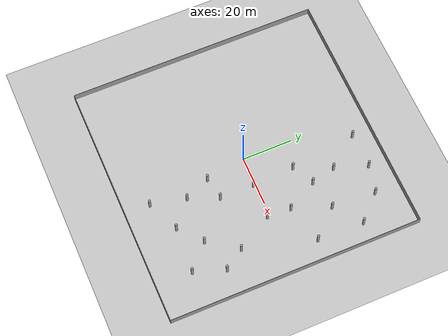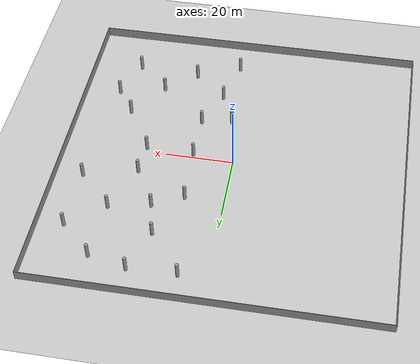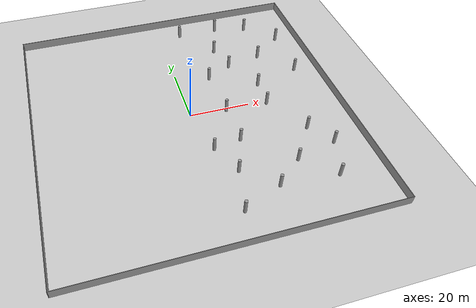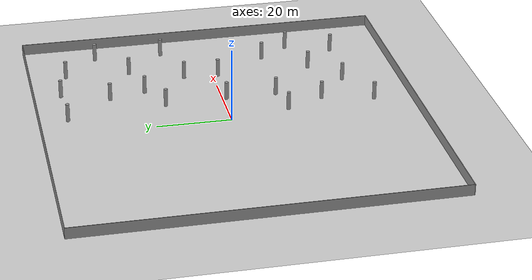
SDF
<sdf version="1.7">
 <world name="default">
  <model name="ground_plane">
   <static>1</static>
   <link name="link">
    <collision name="collision">
     <geometry><plane><normal>0 0 1</normal><size>100 100</size></plane></geometry>
     <surface><friction><ode><mu>100</mu><mu2>50</mu2></ode></friction></surface>
    </collision>
    <visual name="visual">
     <cast_shadows>0</cast_shadows>
     <geometry><plane><normal>0 0 1</normal><size>100 100</size></plane></geometry>
     <material>
      <script><uri>file://media/materials/scripts/gazebo.material</uri><name>Gazebo/Grey</name></script>
     </material>
    </visual>
   </link>
  </model>
  <model name="Fence100">
   <link name="Wall_5">
    <collision name="Wall_5_Collision">
     <geometry><box><size>100.15 0.15 3</size></box></geometry>
     <pose>0 0 1.5 0 -0 0</pose>
    </collision>
    <visual name="Wall_5_Visual">
     <pose>0 0 1.5 0 -0 0</pose>
     <geometry><box><size>100.15 0.15 3</size></box></geometry>
     <material>
      <script><uri>file://media/materials/scripts/gazebo.material</uri><name>Gazebo/Grey</name></script>
      <ambient>1 1 1 1</ambient>
     </material>
     <meta><layer>0</layer></meta>
    </visual>
    <pose>-50 0 0 0 -0 1.5708</pose>
   </link>
   <link name="Wall_6">
    <collision name="Wall_6_Collision">
     <geometry><box><size>100.15 0.15 3</size></box></geometry>
     <pose>0 0 1.5 0 -0 0</pose>
    </collision>
    <visual name="Wall_6_Visual">
     <pose>0 0 1.5 0 -0 0</pose>
     <geometry><box><size>100.15 0.15 3</size></box></geometry>
     <material>
      <script><uri>file://media/materials/scripts/gazebo.material</uri><name>Gazebo/Grey</name></script>
      <ambient>1 1 1 1</ambient>
     </material>
     <meta><layer>0</layer></meta>
    </visual>
    <pose>0 50 0 0 -0 0</pose>
   </link>
   <link name="Wall_8">
    <collision name="Wall_8_Collision">
     <geometry><box><size>100.15 0.15 3</size></box></geometry>
     <pose>0 0 1.5 0 -0 0</pose>
    </collision>
    <visual name="Wall_8_Visual">
     <pose>0 0 1.5 0 -0 0</pose>
     <geometry><box><size>100.15 0.15 3</size></box></geometry>
     <material>
      <script><uri>file://media/materials/scripts/gazebo.material</uri><name>Gazebo/Grey</name></script>
      <ambient>1 1 1 1</ambient>
     </material>
     <meta><layer>0</layer></meta>
    </visual>
    <pose>50 0 0 0 -0 -1.5708</pose>
   </link>
   <link name="Wall_9">
    <collision name="Wall_9_Collision">
     <geometry><box><size>100.15 0.15 3</size></box></geometry>
     <pose>0 0 1.5 0 -0 0</pose>
    </collision>
    <visual name="Wall_9_Visual">
     <pose>0 0 1.5 0 -0 0</pose>
     <geometry><box><size>100.15 0.15 3</size></box></geometry>
     <material>
      <script><uri>file://media/materials/scripts/gazebo.material</uri><name>Gazebo/Grey</name></script>
      <ambient>1 1 1 1</ambient>
     </material>
     <meta><layer>0</layer></meta>
    </visual>
    <pose>0 -50 0 0 -0 3.14159</pose>
   </link>
   <static>1</static>
  </model>
  <model name="cylinder5">
   <link name="link">
    <inertial>
     <mass>1</mass>
     <inertia><ixx>0.145833</ixx><ixy>0</ixy><ixz>0</ixz><iyy>0.145833</iyy><iyz>0</iyz><izz>0.125</izz></inertia>
    </inertial>
    <visual name="visual">
     <geometry><cylinder><radius>0.5</radius><length>5</length></cylinder></geometry>
     <material>
      <script><name>Gazebo/Grey</name><uri>file://media/materials/scripts/gazebo.material</uri></script>
      <shader type="pixel"><normal_map>__default__</normal_map></shader>
      <ambient>0.3 0.3 0.3 1</ambient>
      <diffuse>0.7 0.7 0.7 1</diffuse>
      <specular>0.01 0.01 0.01 1</specular>
      <emissive>0 0 0 1</emissive>
     </material>
    </visual>
    <collision name="collision">
     <geometry><cylinder><radius>0.5</radius><length>5</length></cylinder></geometry>
     <surface>
      <friction>
       <ode><mu>1</mu><mu2>1</mu2><fdir1>0 0 0</fdir1><slip1>0</slip1><slip2>0</slip2></ode>
       <torsional>
        <coefficient>1</coefficient>
        <patch_radius>0</patch_radius>
        <surface_radius>0</surface_radius>
        <use_patch_radius>1</use_patch_radius>
        <ode><slip>0</slip></ode>
       </torsional>
      </friction>
      <bounce><restitution_coefficient>0</restitution_coefficient><threshold>1e+06</threshold></bounce>
      <contact>
       <collide_without_contact>0</collide_without_contact>
       <collide_without_contact_bitmask>1</collide_without_contact_bitmask>
       <collide_bitmask>1</collide_bitmask>
       <ode>
        <soft_cfm>0</soft_cfm>
        <soft_erp>0.2</soft_erp>
        <kp>1e+13</kp>
        <kd>1</kd>
        <max_vel>0.01</max_vel>
        <min_depth>0</min_depth>
       </ode>
       <bullet>
        <split_impulse>1</split_impulse>
        <split_impulse_penetration_threshold>-0.01</split_impulse_penetration_threshold>
        <soft_cfm>0</soft_cfm>
        <soft_erp>0.2</soft_erp>
        <kp>1e+13</kp>
        <kd>1</kd>
       </bullet>
      </contact>
     </surface>
    </collision>
   </link>
   <static>0</static>
   <pose>20 20 2.5 0 -0 0</pose>
  </model>
  <model name="cylinder5_clone">
   <link name="link">
    <inertial>
     <mass>1</mass>
     <inertia><ixx>0.145833</ixx><ixy>0</ixy><ixz>0</ixz><iyy>0.145833</iyy><iyz>0</iyz><izz>0.125</izz></inertia>
    </inertial>
    <visual name="visual">
     <geometry><cylinder><radius>0.5</radius><length>5</length></cylinder></geometry>
     <material>
      <script><name>Gazebo/Grey</name><uri>file://media/materials/scripts/gazebo.material</uri></script>
      <shader type="pixel"><normal_map>__default__</normal_map></shader>
      <ambient>0.3 0.3 0.3 1</ambient>
      <diffuse>0.7 0.7 0.7 1</diffuse>
      <specular>0.01 0.01 0.01 1</specular>
      <emissive>0 0 0 1</emissive>
     </material>
    </visual>
    <collision name="collision">
     <geometry><cylinder><radius>0.5</radius><length>5</length></cylinder></geometry>
     <surface>
      <friction>
       <ode><mu>1</mu><mu2>1</mu2><fdir1>0 0 0</fdir1><slip1>0</slip1><slip2>0</slip2></ode>
       <torsional>
        <coefficient>1</coefficient>
        <patch_radius>0</patch_radius>
        <surface_radius>0</surface_radius>
        <use_patch_radius>1</use_patch_radius>
        <ode><slip>0</slip></ode>
       </torsional>
      </friction>
      <bounce><restitution_coefficient>0</restitution_coefficient><threshold>1e+06</threshold></bounce>
      <contact>
       <collide_without_contact>0</collide_without_contact>
       <collide_without_contact_bitmask>1</collide_without_contact_bitmask>
       <collide_bitmask>1</collide_bitmask>
       <ode>
        <soft_cfm>0</soft_cfm>
        <soft_erp>0.2</soft_erp>
        <kp>1e+13</kp>
        <kd>1</kd>
        <max_vel>0.01</max_vel>
        <min_depth>0</min_depth>
       </ode>
       <bullet>
        <split_impulse>1</split_impulse>
        <split_impulse_penetration_threshold>-0.01</split_impulse_penetration_threshold>
        <soft_cfm>0</soft_cfm>
        <soft_erp>0.2</soft_erp>
        <kp>1e+13</kp>
        <kd>1</kd>
       </bullet>
      </contact>
     </surface>
    </collision>
   </link>
   <static>0</static>
   <pose>17.5739 29.7245 2.5 0 -0 0</pose>
  </model>
  <model name="cylinder5_clone_0">
   <link name="link">
    <inertial>
     <mass>1</mass>
     <inertia><ixx>0.145833</ixx><ixy>0</ixy><ixz>0</ixz><iyy>0.145833</iyy><iyz>0</iyz><izz>0.125</izz></inertia>
    </inertial>
    <visual name="visual">
     <geometry><cylinder><radius>0.5</radius><length>5</length></cylinder></geometry>
     <material>
      <script><name>Gazebo/Grey</name><uri>file://media/materials/scripts/gazebo.material</uri></script>
      <shader type="pixel"><normal_map>__default__</normal_map></shader>
      <ambient>0.3 0.3 0.3 1</ambient>
      <diffuse>0.7 0.7 0.7 1</diffuse>
      <specular>0.01 0.01 0.01 1</specular>
      <emissive>0 0 0 1</emissive>
     </material>
    </visual>
    <collision name="collision">
     <geometry><cylinder><radius>0.5</radius><length>5</length></cylinder></geometry>
     <surface>
      <friction>
       <ode><mu>1</mu><mu2>1</mu2><fdir1>0 0 0</fdir1><slip1>0</slip1><slip2>0</slip2></ode>
       <torsional>
        <coefficient>1</coefficient>
        <patch_radius>0</patch_radius>
        <surface_radius>0</surface_radius>
        <use_patch_radius>1</use_patch_radius>
        <ode><slip>0</slip></ode>
       </torsional>
      </friction>
      <bounce><restitution_coefficient>0</restitution_coefficient><threshold>1e+06</threshold></bounce>
      <contact>
       <collide_without_contact>0</collide_without_contact>
       <collide_without_contact_bitmask>1</collide_without_contact_bitmask>
       <collide_bitmask>1</collide_bitmask>
       <ode>
        <soft_cfm>0</soft_cfm>
        <soft_erp>0.2</soft_erp>
        <kp>1e+13</kp>
        <kd>1</kd>
        <max_vel>0.01</max_vel>
        <min_depth>0</min_depth>
       </ode>
       <bullet>
        <split_impulse>1</split_impulse>
        <split_impulse_penetration_threshold>-0.01</split_impulse_penetration_threshold>
        <soft_cfm>0</soft_cfm>
        <soft_erp>0.2</soft_erp>
        <kp>1e+13</kp>
        <kd>1</kd>
       </bullet>
      </contact>
     </surface>
    </collision>
   </link>
   <static>0</static>
   <pose>31.9826 22.4752 2.5 0 -0 0</pose>
  </model>
  <model name="cylinder5_clone_1">
   <link name="link">
    <inertial>
     <mass>1</mass>
     <inertia><ixx>0.145833</ixx><ixy>0</ixy><ixz>0</ixz><iyy>0.145833</iyy><iyz>0</iyz><izz>0.125</izz></inertia>
    </inertial>
    <visual name="visual">
     <geometry><cylinder><radius>0.5</radius><length>5</length></cylinder></geometry>
     <material>
      <script><name>Gazebo/Grey</name><uri>file://media/materials/scripts/gazebo.material</uri></script>
      <shader type="pixel"><normal_map>__default__</normal_map></shader>
      <ambient>0.3 0.3 0.3 1</ambient>
      <diffuse>0.7 0.7 0.7 1</diffuse>
      <specular>0.01 0.01 0.01 1</specular>
      <emissive>0 0 0 1</emissive>
     </material>
    </visual>
    <collision name="collision">
     <geometry><cylinder><radius>0.5</radius><length>5</length></cylinder></geometry>
     <surface>
      <friction>
       <ode><mu>1</mu><mu2>1</mu2><fdir1>0 0 0</fdir1><slip1>0</slip1><slip2>0</slip2></ode>
       <torsional>
        <coefficient>1</coefficient>
        <patch_radius>0</patch_radius>
        <surface_radius>0</surface_radius>
        <use_patch_radius>1</use_patch_radius>
        <ode><slip>0</slip></ode>
       </torsional>
      </friction>
      <bounce><restitution_coefficient>0</restitution_coefficient><threshold>1e+06</threshold></bounce>
      <contact>
       <collide_without_contact>0</collide_without_contact>
       <collide_without_contact_bitmask>1</collide_without_contact_bitmask>
       <collide_bitmask>1</collide_bitmask>
       <ode>
        <soft_cfm>0</soft_cfm>
        <soft_erp>0.2</soft_erp>
        <kp>1e+13</kp>
        <kd>1</kd>
        <max_vel>0.01</max_vel>
        <min_depth>0</min_depth>
       </ode>
       <bullet>
        <split_impulse>1</split_impulse>
        <split_impulse_penetration_threshold>-0.01</split_impulse_penetration_threshold>
        <soft_cfm>0</soft_cfm>
        <soft_erp>0.2</soft_erp>
        <kp>1e+13</kp>
        <kd>1</kd>
       </bullet>
      </contact>
     </surface>
    </collision>
   </link>
   <static>0</static>
   <pose>26.0453 -1.37565 2.5 0 -0 0</pose>
  </model>
  <model name="cylinder5_clone_2">
   <link name="link">
    <inertial>
     <mass>1</mass>
     <inertia><ixx>0.145833</ixx><ixy>0</ixy><ixz>0</ixz><iyy>0.145833</iyy><iyz>0</iyz><izz>0.125</izz></inertia>
    </inertial>
    <visual name="visual">
     <geometry><cylinder><radius>0.5</radius><length>5</length></cylinder></geometry>
     <material>
      <script><name>Gazebo/Grey</name><uri>file://media/materials/scripts/gazebo.material</uri></script>
      <shader type="pixel"><normal_map>__default__</normal_map></shader>
      <ambient>0.3 0.3 0.3 1</ambient>
      <diffuse>0.7 0.7 0.7 1</diffuse>
      <specular>0.01 0.01 0.01 1</specular>
      <emissive>0 0 0 1</emissive>
     </material>
    </visual>
    <collision name="collision">
     <geometry><cylinder><radius>0.5</radius><length>5</length></cylinder></geometry>
     <surface>
      <friction>
       <ode><mu>1</mu><mu2>1</mu2><fdir1>0 0 0</fdir1><slip1>0</slip1><slip2>0</slip2></ode>
       <torsional>
        <coefficient>1</coefficient>
        <patch_radius>0</patch_radius>
        <surface_radius>0</surface_radius>
        <use_patch_radius>1</use_patch_radius>
        <ode><slip>0</slip></ode>
       </torsional>
      </friction>
      <bounce><restitution_coefficient>0</restitution_coefficient><threshold>1e+06</threshold></bounce>
      <contact>
       <collide_without_contact>0</collide_without_contact>
       <collide_without_contact_bitmask>1</collide_without_contact_bitmask>
       <collide_bitmask>1</collide_bitmask>
       <ode>
        <soft_cfm>0</soft_cfm>
        <soft_erp>0.2</soft_erp>
        <kp>1e+13</kp>
        <kd>1</kd>
        <max_vel>0.01</max_vel>
        <min_depth>0</min_depth>
       </ode>
       <bullet>
        <split_impulse>1</split_impulse>
        <split_impulse_penetration_threshold>-0.01</split_impulse_penetration_threshold>
        <soft_cfm>0</soft_cfm>
        <soft_erp>0.2</soft_erp>
        <kp>1e+13</kp>
        <kd>1</kd>
       </bullet>
      </contact>
     </surface>
    </collision>
   </link>
   <static>0</static>
   <pose>26.5297 7.97836 2.5 0 -0 0</pose>
  </model>
  <model name="cylinder5_clone_12">
   <link name="link">
    <inertial>
     <mass>1</mass>
     <inertia><ixx>0.145833</ixx><ixy>0</ixy><ixz>0</ixz><iyy>0.145833</iyy><iyz>0</iyz><izz>0.125</izz></inertia>
    </inertial>
    <visual name="visual">
     <geometry><cylinder><radius>0.5</radius><length>5</length></cylinder></geometry>
     <material>
      <script><name>Gazebo/Grey</name><uri>file://media/materials/scripts/gazebo.material</uri></script>
      <shader type="pixel"><normal_map>__default__</normal_map></shader>
      <ambient>0.3 0.3 0.3 1</ambient>
      <diffuse>0.7 0.7 0.7 1</diffuse>
      <specular>0.01 0.01 0.01 1</specular>
      <emissive>0 0 0 1</emissive>
     </material>
    </visual>
    <collision name="collision">
     <geometry><cylinder><radius>0.5</radius><length>5</length></cylinder></geometry>
     <surface>
      <friction>
       <ode><mu>1</mu><mu2>1</mu2><fdir1>0 0 0</fdir1><slip1>0</slip1><slip2>0</slip2></ode>
       <torsional>
        <coefficient>1</coefficient>
        <patch_radius>0</patch_radius>
        <surface_radius>0</surface_radius>
        <use_patch_radius>1</use_patch_radius>
        <ode><slip>0</slip></ode>
       </torsional>
      </friction>
      <bounce><restitution_coefficient>0</restitution_coefficient><threshold>1e+06</threshold></bounce>
      <contact>
       <collide_without_contact>0</collide_without_contact>
       <collide_without_contact_bitmask>1</collide_without_contact_bitmask>
       <collide_bitmask>1</collide_bitmask>
       <ode>
        <soft_cfm>0</soft_cfm>
        <soft_erp>0.2</soft_erp>
        <kp>1e+13</kp>
        <kd>1</kd>
        <max_vel>0.01</max_vel>
        <min_depth>0</min_depth>
       </ode>
       <bullet>
        <split_impulse>1</split_impulse>
        <split_impulse_penetration_threshold>-0.01</split_impulse_penetration_threshold>
        <soft_cfm>0</soft_cfm>
        <soft_erp>0.2</soft_erp>
        <kp>1e+13</kp>
        <kd>1</kd>
       </bullet>
      </contact>
     </surface>
    </collision>
   </link>
   <static>0</static>
   <pose>11.2799 15.6577 2.5 0 -0 0</pose>
  </model>
  <model name="cylinder5_clone_13">
   <link name="link">
    <inertial>
     <mass>1</mass>
     <inertia><ixx>0.145833</ixx><ixy>0</ixy><ixz>0</ixz><iyy>0.145833</iyy><iyz>0</iyz><izz>0.125</izz></inertia>
    </inertial>
    <visual name="visual">
     <geometry><cylinder><radius>0.5</radius><length>5</length></cylinder></geometry>
     <material>
      <script><name>Gazebo/Grey</name><uri>file://media/materials/scripts/gazebo.material</uri></script>
      <shader type="pixel"><normal_map>__default__</normal_map></shader>
      <ambient>0.3 0.3 0.3 1</ambient>
      <diffuse>0.7 0.7 0.7 1</diffuse>
      <specular>0.01 0.01 0.01 1</specular>
      <emissive>0 0 0 1</emissive>
     </material>
    </visual>
    <collision name="collision">
     <geometry><cylinder><radius>0.5</radius><length>5</length></cylinder></geometry>
     <surface>
      <friction>
       <ode><mu>1</mu><mu2>1</mu2><fdir1>0 0 0</fdir1><slip1>0</slip1><slip2>0</slip2></ode>
       <torsional>
        <coefficient>1</coefficient>
        <patch_radius>0</patch_radius>
        <surface_radius>0</surface_radius>
        <use_patch_radius>1</use_patch_radius>
        <ode><slip>0</slip></ode>
       </torsional>
      </friction>
      <bounce><restitution_coefficient>0</restitution_coefficient><threshold>1e+06</threshold></bounce>
      <contact>
       <collide_without_contact>0</collide_without_contact>
       <collide_without_contact_bitmask>1</collide_without_contact_bitmask>
       <collide_bitmask>1</collide_bitmask>
       <ode>
        <soft_cfm>0</soft_cfm>
        <soft_erp>0.2</soft_erp>
        <kp>1e+13</kp>
        <kd>1</kd>
        <max_vel>0.01</max_vel>
        <min_depth>0</min_depth>
       </ode>
       <bullet>
        <split_impulse>1</split_impulse>
        <split_impulse_penetration_threshold>-0.01</split_impulse_penetration_threshold>
        <soft_cfm>0</soft_cfm>
        <soft_erp>0.2</soft_erp>
        <kp>1e+13</kp>
        <kd>1</kd>
       </bullet>
      </contact>
     </surface>
    </collision>
   </link>
   <static>0</static>
   <pose>12 -1 2.5 0 -0 0</pose>
  </model>
  <model name="cylinder5_clone_14">
   <link name="link">
    <inertial>
     <mass>1</mass>
     <inertia><ixx>0.145833</ixx><ixy>0</ixy><ixz>0</ixz><iyy>0.145833</iyy><iyz>0</iyz><izz>0.125</izz></inertia>
    </inertial>
    <visual name="visual">
     <geometry><cylinder><radius>0.5</radius><length>5</length></cylinder></geometry>
     <material>
      <script><name>Gazebo/Grey</name><uri>file://media/materials/scripts/gazebo.material</uri></script>
      <shader type="pixel"><normal_map>__default__</normal_map></shader>
      <ambient>0.3 0.3 0.3 1</ambient>
      <diffuse>0.7 0.7 0.7 1</diffuse>
      <specular>0.01 0.01 0.01 1</specular>
      <emissive>0 0 0 1</emissive>
     </material>
    </visual>
    <collision name="collision">
     <geometry><cylinder><radius>0.5</radius><length>5</length></cylinder></geometry>
     <surface>
      <friction>
       <ode><mu>1</mu><mu2>1</mu2><fdir1>0 0 0</fdir1><slip1>0</slip1><slip2>0</slip2></ode>
       <torsional>
        <coefficient>1</coefficient>
        <patch_radius>0</patch_radius>
        <surface_radius>0</surface_radius>
        <use_patch_radius>1</use_patch_radius>
        <ode><slip>0</slip></ode>
       </torsional>
      </friction>
      <bounce><restitution_coefficient>0</restitution_coefficient><threshold>1e+06</threshold></bounce>
      <contact>
       <collide_without_contact>0</collide_without_contact>
       <collide_without_contact_bitmask>1</collide_without_contact_bitmask>
       <collide_bitmask>1</collide_bitmask>
       <ode>
        <soft_cfm>0</soft_cfm>
        <soft_erp>0.2</soft_erp>
        <kp>1e+13</kp>
        <kd>1</kd>
        <max_vel>0.01</max_vel>
        <min_depth>0</min_depth>
       </ode>
       <bullet>
        <split_impulse>1</split_impulse>
        <split_impulse_penetration_threshold>-0.01</split_impulse_penetration_threshold>
        <soft_cfm>0</soft_cfm>
        <soft_erp>0.2</soft_erp>
        <kp>1e+13</kp>
        <kd>1</kd>
       </bullet>
      </contact>
     </surface>
    </collision>
   </link>
   <static>0</static>
   <pose>12.0182 -14.5473 2.5 0 -0 0</pose>
  </model>
  <model name="cylinder5_clone_18">
   <link name="link">
    <inertial>
     <mass>1</mass>
     <inertia><ixx>0.145833</ixx><ixy>0</ixy><ixz>0</ixz><iyy>0.145833</iyy><iyz>0</iyz><izz>0.125</izz></inertia>
    </inertial>
    <visual name="visual">
     <geometry><cylinder><radius>0.5</radius><length>5</length></cylinder></geometry>
     <material>
      <script><name>Gazebo/Grey</name><uri>file://media/materials/scripts/gazebo.material</uri></script>
      <shader type="pixel"><normal_map>__default__</normal_map></shader>
      <ambient>0.3 0.3 0.3 1</ambient>
      <diffuse>0.7 0.7 0.7 1</diffuse>
      <specular>0.01 0.01 0.01 1</specular>
      <emissive>0 0 0 1</emissive>
     </material>
    </visual>
    <collision name="collision">
     <geometry><cylinder><radius>0.5</radius><length>5</length></cylinder></geometry>
     <surface>
      <friction>
       <ode><mu>1</mu><mu2>1</mu2><fdir1>0 0 0</fdir1><slip1>0</slip1><slip2>0</slip2></ode>
       <torsional>
        <coefficient>1</coefficient>
        <patch_radius>0</patch_radius>
        <surface_radius>0</surface_radius>
        <use_patch_radius>1</use_patch_radius>
        <ode><slip>0</slip></ode>
       </torsional>
      </friction>
      <bounce><restitution_coefficient>0</restitution_coefficient><threshold>1e+06</threshold></bounce>
      <contact>
       <collide_without_contact>0</collide_without_contact>
       <collide_without_contact_bitmask>1</collide_without_contact_bitmask>
       <collide_bitmask>1</collide_bitmask>
       <ode>
        <soft_cfm>0</soft_cfm>
        <soft_erp>0.2</soft_erp>
        <kp>1e+13</kp>
        <kd>1</kd>
        <max_vel>0.01</max_vel>
        <min_depth>0</min_depth>
       </ode>
       <bullet>
        <split_impulse>1</split_impulse>
        <split_impulse_penetration_threshold>-0.01</split_impulse_penetration_threshold>
        <soft_cfm>0</soft_cfm>
        <soft_erp>0.2</soft_erp>
        <kp>1e+13</kp>
        <kd>1</kd>
       </bullet>
      </contact>
     </surface>
    </collision>
   </link>
   <static>0</static>
   <pose>3 -16 2.5 0 -0 0</pose>
  </model>
  <model name="cylinder5_clone_22">
   <link name="link">
    <inertial>
     <mass>1</mass>
     <inertia><ixx>0.145833</ixx><ixy>0</ixy><ixz>0</ixz><iyy>0.145833</iyy><iyz>0</iyz><izz>0.125</izz></inertia>
    </inertial>
    <visual name="visual">
     <geometry><cylinder><radius>0.5</radius><length>5</length></cylinder></geometry>
     <material>
      <script><name>Gazebo/Grey</name><uri>file://media/materials/scripts/gazebo.material</uri></script>
      <shader type="pixel"><normal_map>__default__</normal_map></shader>
      <ambient>0.3 0.3 0.3 1</ambient>
      <diffuse>0.7 0.7 0.7 1</diffuse>
      <specular>0.01 0.01 0.01 1</specular>
      <emissive>0 0 0 1</emissive>
     </material>
    </visual>
    <collision name="collision">
     <geometry><cylinder><radius>0.5</radius><length>5</length></cylinder></geometry>
     <surface>
      <friction>
       <ode><mu>1</mu><mu2>1</mu2><fdir1>0 0 0</fdir1><slip1>0</slip1><slip2>0</slip2></ode>
       <torsional>
        <coefficient>1</coefficient>
        <patch_radius>0</patch_radius>
        <surface_radius>0</surface_radius>
        <use_patch_radius>1</use_patch_radius>
        <ode><slip>0</slip></ode>
       </torsional>
      </friction>
      <bounce><restitution_coefficient>0</restitution_coefficient><threshold>1e+06</threshold></bounce>
      <contact>
       <collide_without_contact>0</collide_without_contact>
       <collide_without_contact_bitmask>1</collide_without_contact_bitmask>
       <collide_bitmask>1</collide_bitmask>
       <ode>
        <soft_cfm>0</soft_cfm>
        <soft_erp>0.2</soft_erp>
        <kp>1e+13</kp>
        <kd>1</kd>
        <max_vel>0.01</max_vel>
        <min_depth>0</min_depth>
       </ode>
       <bullet>
        <split_impulse>1</split_impulse>
        <split_impulse_penetration_threshold>-0.01</split_impulse_penetration_threshold>
        <soft_cfm>0</soft_cfm>
        <soft_erp>0.2</soft_erp>
        <kp>1e+13</kp>
        <kd>1</kd>
       </bullet>
      </contact>
     </surface>
    </collision>
   </link>
   <static>0</static>
   <pose>4.19569 -39.8848 2.5 0 -0 0</pose>
  </model>
  <model name="cylinder5_clone_23">
   <link name="link">
    <inertial>
     <mass>1</mass>
     <inertia><ixx>0.145833</ixx><ixy>0</ixy><ixz>0</ixz><iyy>0.145833</iyy><iyz>0</iyz><izz>0.125</izz></inertia>
    </inertial>
    <visual name="visual">
     <geometry><cylinder><radius>0.5</radius><length>5</length></cylinder></geometry>
     <material>
      <script><name>Gazebo/Grey</name><uri>file://media/materials/scripts/gazebo.material</uri></script>
      <shader type="pixel"><normal_map>__default__</normal_map></shader>
      <ambient>0.3 0.3 0.3 1</ambient>
      <diffuse>0.7 0.7 0.7 1</diffuse>
      <specular>0.01 0.01 0.01 1</specular>
      <emissive>0 0 0 1</emissive>
     </material>
    </visual>
    <collision name="collision">
     <geometry><cylinder><radius>0.5</radius><length>5</length></cylinder></geometry>
     <surface>
      <friction>
       <ode><mu>1</mu><mu2>1</mu2><fdir1>0 0 0</fdir1><slip1>0</slip1><slip2>0</slip2></ode>
       <torsional>
        <coefficient>1</coefficient>
        <patch_radius>0</patch_radius>
        <surface_radius>0</surface_radius>
        <use_patch_radius>1</use_patch_radius>
        <ode><slip>0</slip></ode>
       </torsional>
      </friction>
      <bounce><restitution_coefficient>0</restitution_coefficient><threshold>1e+06</threshold></bounce>
      <contact>
       <collide_without_contact>0</collide_without_contact>
       <collide_without_contact_bitmask>1</collide_without_contact_bitmask>
       <collide_bitmask>1</collide_bitmask>
       <ode>
        <soft_cfm>0</soft_cfm>
        <soft_erp>0.2</soft_erp>
        <kp>1e+13</kp>
        <kd>1</kd>
        <max_vel>0.01</max_vel>
        <min_depth>0</min_depth>
       </ode>
       <bullet>
        <split_impulse>1</split_impulse>
        <split_impulse_penetration_threshold>-0.01</split_impulse_penetration_threshold>
        <soft_cfm>0</soft_cfm>
        <soft_erp>0.2</soft_erp>
        <kp>1e+13</kp>
        <kd>1</kd>
       </bullet>
      </contact>
     </surface>
    </collision>
   </link>
   <static>0</static>
   <pose>17.0493 -34.3699 2.5 0 -0 0</pose>
  </model>
  <model name="cylinder5_clone_24">
   <link name="link">
    <inertial>
     <mass>1</mass>
     <inertia><ixx>0.145833</ixx><ixy>0</ixy><ixz>0</ixz><iyy>0.145833</iyy><iyz>0</iyz><izz>0.125</izz></inertia>
    </inertial>
    <visual name="visual">
     <geometry><cylinder><radius>0.5</radius><length>5</length></cylinder></geometry>
     <material>
      <script><name>Gazebo/Grey</name><uri>file://media/materials/scripts/gazebo.material</uri></script>
      <shader type="pixel"><normal_map>__default__</normal_map></shader>
      <ambient>0.3 0.3 0.3 1</ambient>
      <diffuse>0.7 0.7 0.7 1</diffuse>
      <specular>0.01 0.01 0.01 1</specular>
      <emissive>0 0 0 1</emissive>
     </material>
    </visual>
    <collision name="collision">
     <geometry><cylinder><radius>0.5</radius><length>5</length></cylinder></geometry>
     <surface>
      <friction>
       <ode><mu>1</mu><mu2>1</mu2><fdir1>0 0 0</fdir1><slip1>0</slip1><slip2>0</slip2></ode>
       <torsional>
        <coefficient>1</coefficient>
        <patch_radius>0</patch_radius>
        <surface_radius>0</surface_radius>
        <use_patch_radius>1</use_patch_radius>
        <ode><slip>0</slip></ode>
       </torsional>
      </friction>
      <bounce><restitution_coefficient>0</restitution_coefficient><threshold>1e+06</threshold></bounce>
      <contact>
       <collide_without_contact>0</collide_without_contact>
       <collide_without_contact_bitmask>1</collide_without_contact_bitmask>
       <collide_bitmask>1</collide_bitmask>
       <ode>
        <soft_cfm>0</soft_cfm>
        <soft_erp>0.2</soft_erp>
        <kp>1e+13</kp>
        <kd>1</kd>
        <max_vel>0.01</max_vel>
        <min_depth>0</min_depth>
       </ode>
       <bullet>
        <split_impulse>1</split_impulse>
        <split_impulse_penetration_threshold>-0.01</split_impulse_penetration_threshold>
        <soft_cfm>0</soft_cfm>
        <soft_erp>0.2</soft_erp>
        <kp>1e+13</kp>
        <kd>1</kd>
       </bullet>
      </contact>
     </surface>
    </collision>
   </link>
   <static>0</static>
   <pose>26.0273 -26.8351 2.5 0 -0 0</pose>
  </model>
  <model name="cylinder5_clone_25">
   <link name="link">
    <inertial>
     <mass>1</mass>
     <inertia><ixx>0.145833</ixx><ixy>0</ixy><ixz>0</ixz><iyy>0.145833</iyy><iyz>0</iyz><izz>0.125</izz></inertia>
    </inertial>
    <visual name="visual">
     <geometry><cylinder><radius>0.5</radius><length>5</length></cylinder></geometry>
     <material>
      <script><name>Gazebo/Grey</name><uri>file://media/materials/scripts/gazebo.material</uri></script>
      <shader type="pixel"><normal_map>__default__</normal_map></shader>
      <ambient>0.3 0.3 0.3 1</ambient>
      <diffuse>0.7 0.7 0.7 1</diffuse>
      <specular>0.01 0.01 0.01 1</specular>
      <emissive>0 0 0 1</emissive>
     </material>
    </visual>
    <collision name="collision">
     <geometry><cylinder><radius>0.5</radius><length>5</length></cylinder></geometry>
     <surface>
      <friction>
       <ode><mu>1</mu><mu2>1</mu2><fdir1>0 0 0</fdir1><slip1>0</slip1><slip2>0</slip2></ode>
       <torsional>
        <coefficient>1</coefficient>
        <patch_radius>0</patch_radius>
        <surface_radius>0</surface_radius>
        <use_patch_radius>1</use_patch_radius>
        <ode><slip>0</slip></ode>
       </torsional>
      </friction>
      <bounce><restitution_coefficient>0</restitution_coefficient><threshold>1e+06</threshold></bounce>
      <contact>
       <collide_without_contact>0</collide_without_contact>
       <collide_without_contact_bitmask>1</collide_without_contact_bitmask>
       <collide_bitmask>1</collide_bitmask>
       <ode>
        <soft_cfm>0</soft_cfm>
        <soft_erp>0.2</soft_erp>
        <kp>1e+13</kp>
        <kd>1</kd>
        <max_vel>0.01</max_vel>
        <min_depth>0</min_depth>
       </ode>
       <bullet>
        <split_impulse>1</split_impulse>
        <split_impulse_penetration_threshold>-0.01</split_impulse_penetration_threshold>
        <soft_cfm>0</soft_cfm>
        <soft_erp>0.2</soft_erp>
        <kp>1e+13</kp>
        <kd>1</kd>
       </bullet>
      </contact>
     </surface>
    </collision>
   </link>
   <static>0</static>
   <pose>34.2126 -15.4662 2.5 0 -0 0</pose>
  </model>
  <model name="cylinder5_clone_26">
   <link name="link">
    <inertial>
     <mass>1</mass>
     <inertia><ixx>0.145833</ixx><ixy>0</ixy><ixz>0</ixz><iyy>0.145833</iyy><iyz>0</iyz><izz>0.125</izz></inertia>
    </inertial>
    <visual name="visual">
     <geometry><cylinder><radius>0.5</radius><length>5</length></cylinder></geometry>
     <material>
      <script><name>Gazebo/Grey</name><uri>file://media/materials/scripts/gazebo.material</uri></script>
      <shader type="pixel"><normal_map>__default__</normal_map></shader>
      <ambient>0.3 0.3 0.3 1</ambient>
      <diffuse>0.7 0.7 0.7 1</diffuse>
      <specular>0.01 0.01 0.01 1</specular>
      <emissive>0 0 0 1</emissive>
     </material>
    </visual>
    <collision name="collision">
     <geometry><cylinder><radius>0.5</radius><length>5</length></cylinder></geometry>
     <surface>
      <friction>
       <ode><mu>1</mu><mu2>1</mu2><fdir1>0 0 0</fdir1><slip1>0</slip1><slip2>0</slip2></ode>
       <torsional>
        <coefficient>1</coefficient>
        <patch_radius>0</patch_radius>
        <surface_radius>0</surface_radius>
        <use_patch_radius>1</use_patch_radius>
        <ode><slip>0</slip></ode>
       </torsional>
      </friction>
      <bounce><restitution_coefficient>0</restitution_coefficient><threshold>1e+06</threshold></bounce>
      <contact>
       <collide_without_contact>0</collide_without_contact>
       <collide_without_contact_bitmask>1</collide_without_contact_bitmask>
       <collide_bitmask>1</collide_bitmask>
       <ode>
        <soft_cfm>0</soft_cfm>
        <soft_erp>0.2</soft_erp>
        <kp>1e+13</kp>
        <kd>1</kd>
        <max_vel>0.01</max_vel>
        <min_depth>0</min_depth>
       </ode>
       <bullet>
        <split_impulse>1</split_impulse>
        <split_impulse_penetration_threshold>-0.01</split_impulse_penetration_threshold>
        <soft_cfm>0</soft_cfm>
        <soft_erp>0.2</soft_erp>
        <kp>1e+13</kp>
        <kd>1</kd>
       </bullet>
      </contact>
     </surface>
    </collision>
   </link>
   <static>0</static>
   <pose>35.4227 -35.5533 2.5 0 -0 0</pose>
  </model>
  <model name="cylinder5_clone_31">
   <link name="link">
    <inertial>
     <mass>1</mass>
     <inertia><ixx>0.145833</ixx><ixy>0</ixy><ixz>0</ixz><iyy>0.145833</iyy><iyz>0</iyz><izz>0.125</izz></inertia>
    </inertial>
    <visual name="visual">
     <geometry><cylinder><radius>0.5</radius><length>5</length></cylinder></geometry>
     <material>
      <script><name>Gazebo/Grey</name><uri>file://media/materials/scripts/gazebo.material</uri></script>
      <shader type="pixel"><normal_map>__default__</normal_map></shader>
      <ambient>0.3 0.3 0.3 1</ambient>
      <diffuse>0.7 0.7 0.7 1</diffuse>
      <specular>0.01 0.01 0.01 1</specular>
      <emissive>0 0 0 1</emissive>
     </material>
    </visual>
    <collision name="collision">
     <geometry><cylinder><radius>0.5</radius><length>5</length></cylinder></geometry>
     <surface>
      <friction>
       <ode><mu>1</mu><mu2>1</mu2><fdir1>0 0 0</fdir1><slip1>0</slip1><slip2>0</slip2></ode>
       <torsional>
        <coefficient>1</coefficient>
        <patch_radius>0</patch_radius>
        <surface_radius>0</surface_radius>
        <use_patch_radius>1</use_patch_radius>
        <ode><slip>0</slip></ode>
       </torsional>
      </friction>
      <bounce><restitution_coefficient>0</restitution_coefficient><threshold>1e+06</threshold></bounce>
      <contact>
       <collide_without_contact>0</collide_without_contact>
       <collide_without_contact_bitmask>1</collide_without_contact_bitmask>
       <collide_bitmask>1</collide_bitmask>
       <ode>
        <soft_cfm>0</soft_cfm>
        <soft_erp>0.2</soft_erp>
        <kp>1e+13</kp>
        <kd>1</kd>
        <max_vel>0.01</max_vel>
        <min_depth>0</min_depth>
       </ode>
       <bullet>
        <split_impulse>1</split_impulse>
        <split_impulse_penetration_threshold>-0.01</split_impulse_penetration_threshold>
        <soft_cfm>0</soft_cfm>
        <soft_erp>0.2</soft_erp>
        <kp>1e+13</kp>
        <kd>1</kd>
       </bullet>
      </contact>
     </surface>
    </collision>
   </link>
   <static>0</static>
   <pose>32.9979 39.8283 2.5 0 -0 0</pose>
  </model>
  <model name="cylinder5_clone_32">
   <link name="link">
    <inertial>
     <mass>1</mass>
     <inertia><ixx>0.145833</ixx><ixy>0</ixy><ixz>0</ixz><iyy>0.145833</iyy><iyz>0</iyz><izz>0.125</izz></inertia>
    </inertial>
    <visual name="visual">
     <geometry><cylinder><radius>0.5</radius><length>5</length></cylinder></geometry>
     <material>
      <script><name>Gazebo/Grey</name><uri>file://media/materials/scripts/gazebo.material</uri></script>
      <shader type="pixel"><normal_map>__default__</normal_map></shader>
      <ambient>0.3 0.3 0.3 1</ambient>
      <diffuse>0.7 0.7 0.7 1</diffuse>
      <specular>0.01 0.01 0.01 1</specular>
      <emissive>0 0 0 1</emissive>
     </material>
    </visual>
    <collision name="collision">
     <geometry><cylinder><radius>0.5</radius><length>5</length></cylinder></geometry>
     <surface>
      <friction>
       <ode><mu>1</mu><mu2>1</mu2><fdir1>0 0 0</fdir1><slip1>0</slip1><slip2>0</slip2></ode>
       <torsional>
        <coefficient>1</coefficient>
        <patch_radius>0</patch_radius>
        <surface_radius>0</surface_radius>
        <use_patch_radius>1</use_patch_radius>
        <ode><slip>0</slip></ode>
       </torsional>
      </friction>
      <bounce><restitution_coefficient>0</restitution_coefficient><threshold>1e+06</threshold></bounce>
      <contact>
       <collide_without_contact>0</collide_without_contact>
       <collide_without_contact_bitmask>1</collide_without_contact_bitmask>
       <collide_bitmask>1</collide_bitmask>
       <ode>
        <soft_cfm>0</soft_cfm>
        <soft_erp>0.2</soft_erp>
        <kp>1e+13</kp>
        <kd>1</kd>
        <max_vel>0.01</max_vel>
        <min_depth>0</min_depth>
       </ode>
       <bullet>
        <split_impulse>1</split_impulse>
        <split_impulse_penetration_threshold>-0.01</split_impulse_penetration_threshold>
        <soft_cfm>0</soft_cfm>
        <soft_erp>0.2</soft_erp>
        <kp>1e+13</kp>
        <kd>1</kd>
       </bullet>
      </contact>
     </surface>
    </collision>
   </link>
   <static>0</static>
   <pose>41.9717 12.0434 2.5 0 -0 0</pose>
  </model>
  <model name="cylinder5_clone_33">
   <link name="link">
    <inertial>
     <mass>1</mass>
     <inertia><ixx>0.145833</ixx><ixy>0</ixy><ixz>0</ixz><iyy>0.145833</iyy><iyz>0</iyz><izz>0.125</izz></inertia>
    </inertial>
    <visual name="visual">
     <geometry><cylinder><radius>0.5</radius><length>5</length></cylinder></geometry>
     <material>
      <script><name>Gazebo/Grey</name><uri>file://media/materials/scripts/gazebo.material</uri></script>
      <shader type="pixel"><normal_map>__default__</normal_map></shader>
      <ambient>0.3 0.3 0.3 1</ambient>
      <diffuse>0.7 0.7 0.7 1</diffuse>
      <specular>0.01 0.01 0.01 1</specular>
      <emissive>0 0 0 1</emissive>
     </material>
    </visual>
    <collision name="collision">
     <geometry><cylinder><radius>0.5</radius><length>5</length></cylinder></geometry>
     <surface>
      <friction>
       <ode><mu>1</mu><mu2>1</mu2><fdir1>0 0 0</fdir1><slip1>0</slip1><slip2>0</slip2></ode>
       <torsional>
        <coefficient>1</coefficient>
        <patch_radius>0</patch_radius>
        <surface_radius>0</surface_radius>
        <use_patch_radius>1</use_patch_radius>
        <ode><slip>0</slip></ode>
       </torsional>
      </friction>
      <bounce><restitution_coefficient>0</restitution_coefficient><threshold>1e+06</threshold></bounce>
      <contact>
       <collide_without_contact>0</collide_without_contact>
       <collide_without_contact_bitmask>1</collide_without_contact_bitmask>
       <collide_bitmask>1</collide_bitmask>
       <ode>
        <soft_cfm>0</soft_cfm>
        <soft_erp>0.2</soft_erp>
        <kp>1e+13</kp>
        <kd>1</kd>
        <max_vel>0.01</max_vel>
        <min_depth>0</min_depth>
       </ode>
       <bullet>
        <split_impulse>1</split_impulse>
        <split_impulse_penetration_threshold>-0.01</split_impulse_penetration_threshold>
        <soft_cfm>0</soft_cfm>
        <soft_erp>0.2</soft_erp>
        <kp>1e+13</kp>
        <kd>1</kd>
       </bullet>
      </contact>
     </surface>
    </collision>
   </link>
   <static>0</static>
   <pose>39.5925 -23.4369 2.5 0 -0 0</pose>
  </model>
  <model name="cylinder5_clone_34">
   <link name="link">
    <inertial>
     <mass>1</mass>
     <inertia><ixx>0.145833</ixx><ixy>0</ixy><ixz>0</ixz><iyy>0.145833</iyy><iyz>0</iyz><izz>0.125</izz></inertia>
    </inertial>
    <visual name="visual">
     <geometry><cylinder><radius>0.5</radius><length>5</length></cylinder></geometry>
     <material>
      <script><name>Gazebo/Grey</name><uri>file://media/materials/scripts/gazebo.material</uri></script>
      <shader type="pixel"><normal_map>__default__</normal_map></shader>
      <ambient>0.3 0.3 0.3 1</ambient>
      <diffuse>0.7 0.7 0.7 1</diffuse>
      <specular>0.01 0.01 0.01 1</specular>
      <emissive>0 0 0 1</emissive>
     </material>
    </visual>
    <collision name="collision">
     <geometry><cylinder><radius>0.5</radius><length>5</length></cylinder></geometry>
     <surface>
      <friction>
       <ode><mu>1</mu><mu2>1</mu2><fdir1>0 0 0</fdir1><slip1>0</slip1><slip2>0</slip2></ode>
       <torsional>
        <coefficient>1</coefficient>
        <patch_radius>0</patch_radius>
        <surface_radius>0</surface_radius>
        <use_patch_radius>1</use_patch_radius>
        <ode><slip>0</slip></ode>
       </torsional>
      </friction>
      <bounce><restitution_coefficient>0</restitution_coefficient><threshold>1e+06</threshold></bounce>
      <contact>
       <collide_without_contact>0</collide_without_contact>
       <collide_without_contact_bitmask>1</collide_without_contact_bitmask>
       <collide_bitmask>1</collide_bitmask>
       <ode>
        <soft_cfm>0</soft_cfm>
        <soft_erp>0.2</soft_erp>
        <kp>1e+13</kp>
        <kd>1</kd>
        <max_vel>0.01</max_vel>
        <min_depth>0</min_depth>
       </ode>
       <bullet>
        <split_impulse>1</split_impulse>
        <split_impulse_penetration_threshold>-0.01</split_impulse_penetration_threshold>
        <soft_cfm>0</soft_cfm>
        <soft_erp>0.2</soft_erp>
        <kp>1e+13</kp>
        <kd>1</kd>
       </bullet>
      </contact>
     </surface>
    </collision>
   </link>
   <static>0</static>
   <pose>7.33146 -26.1012 2.5 0 -0 0</pose>
  </model>
  <model name="cylinder5_clone_38">
   <link name="link">
    <inertial>
     <mass>1</mass>
     <inertia><ixx>0.145833</ixx><ixy>0</ixy><ixz>0</ixz><iyy>0.145833</iyy><iyz>0</iyz><izz>0.125</izz></inertia>
    </inertial>
    <visual name="visual">
     <geometry><cylinder><radius>0.5</radius><length>5</length></cylinder></geometry>
     <material>
      <script><name>Gazebo/Grey</name><uri>file://media/materials/scripts/gazebo.material</uri></script>
      <shader type="pixel"><normal_map>__default__</normal_map></shader>
      <ambient>0.3 0.3 0.3 1</ambient>
      <diffuse>0.7 0.7 0.7 1</diffuse>
      <specular>0.01 0.01 0.01 1</specular>
      <emissive>0 0 0 1</emissive>
     </material>
    </visual>
    <collision name="collision">
     <geometry><cylinder><radius>0.5</radius><length>5</length></cylinder></geometry>
     <surface>
      <friction>
       <ode><mu>1</mu><mu2>1</mu2><fdir1>0 0 0</fdir1><slip1>0</slip1><slip2>0</slip2></ode>
       <torsional>
        <coefficient>1</coefficient>
        <patch_radius>0</patch_radius>
        <surface_radius>0</surface_radius>
        <use_patch_radius>1</use_patch_radius>
        <ode><slip>0</slip></ode>
       </torsional>
      </friction>
      <bounce><restitution_coefficient>0</restitution_coefficient><threshold>1e+06</threshold></bounce>
      <contact>
       <collide_without_contact>0</collide_without_contact>
       <collide_without_contact_bitmask>1</collide_without_contact_bitmask>
       <collide_bitmask>1</collide_bitmask>
       <ode>
        <soft_cfm>0</soft_cfm>
        <soft_erp>0.2</soft_erp>
        <kp>1e+13</kp>
        <kd>1</kd>
        <max_vel>0.01</max_vel>
        <min_depth>0</min_depth>
       </ode>
       <bullet>
        <split_impulse>1</split_impulse>
        <split_impulse_penetration_threshold>-0.01</split_impulse_penetration_threshold>
        <soft_cfm>0</soft_cfm>
        <soft_erp>0.2</soft_erp>
        <kp>1e+13</kp>
        <kd>1</kd>
       </bullet>
      </contact>
     </surface>
    </collision>
   </link>
   <static>0</static>
   <pose>7.87552 42.2693 2.5 0 -0 0</pose>
  </model>
  <model name="cylinder5_clone_39">
   <link name="link">
    <inertial>
     <mass>1</mass>
     <inertia><ixx>0.145833</ixx><ixy>0</ixy><ixz>0</ixz><iyy>0.145833</iyy><iyz>0</iyz><izz>0.125</izz></inertia>
    </inertial>
    <visual name="visual">
     <geometry><cylinder><radius>0.5</radius><length>5</length></cylinder></geometry>
     <material>
      <script><name>Gazebo/Grey</name><uri>file://media/materials/scripts/gazebo.material</uri></script>
      <shader type="pixel"><normal_map>__default__</normal_map></shader>
      <ambient>0.3 0.3 0.3 1</ambient>
      <diffuse>0.7 0.7 0.7 1</diffuse>
      <specular>0.01 0.01 0.01 1</specular>
      <emissive>0 0 0 1</emissive>
     </material>
    </visual>
    <collision name="collision">
     <geometry><cylinder><radius>0.5</radius><length>5</length></cylinder></geometry>
     <surface>
      <friction>
       <ode><mu>1</mu><mu2>1</mu2><fdir1>0 0 0</fdir1><slip1>0</slip1><slip2>0</slip2></ode>
       <torsional>
        <coefficient>1</coefficient>
        <patch_radius>0</patch_radius>
        <surface_radius>0</surface_radius>
        <use_patch_radius>1</use_patch_radius>
        <ode><slip>0</slip></ode>
       </torsional>
      </friction>
      <bounce><restitution_coefficient>0</restitution_coefficient><threshold>1e+06</threshold></bounce>
      <contact>
       <collide_without_contact>0</collide_without_contact>
       <collide_without_contact_bitmask>1</collide_without_contact_bitmask>
       <collide_bitmask>1</collide_bitmask>
       <ode>
        <soft_cfm>0</soft_cfm>
        <soft_erp>0.2</soft_erp>
        <kp>1e+13</kp>
        <kd>1</kd>
        <max_vel>0.01</max_vel>
        <min_depth>0</min_depth>
       </ode>
       <bullet>
        <split_impulse>1</split_impulse>
        <split_impulse_penetration_threshold>-0.01</split_impulse_penetration_threshold>
        <soft_cfm>0</soft_cfm>
        <soft_erp>0.2</soft_erp>
        <kp>1e+13</kp>
        <kd>1</kd>
       </bullet>
      </contact>
     </surface>
    </collision>
   </link>
   <static>0</static>
   <pose>21.9165 42.4766 2.5 0 -0 0</pose>
  </model>
  <model name="cylinder5_clone_40">
   <link name="link">
    <inertial>
     <mass>1</mass>
     <inertia><ixx>0.145833</ixx><ixy>0</ixy><ixz>0</ixz><iyy>0.145833</iyy><iyz>0</iyz><izz>0.125</izz></inertia>
    </inertial>
    <visual name="visual">
     <geometry><cylinder><radius>0.5</radius><length>5</length></cylinder></geometry>
     <material>
      <script><name>Gazebo/Grey</name><uri>file://media/materials/scripts/gazebo.material</uri></script>
      <shader type="pixel"><normal_map>__default__</normal_map></shader>
      <ambient>0.3 0.3 0.3 1</ambient>
      <diffuse>0.7 0.7 0.7 1</diffuse>
      <specular>0.01 0.01 0.01 1</specular>
      <emissive>0 0 0 1</emissive>
     </material>
    </visual>
    <collision name="collision">
     <geometry><cylinder><radius>0.5</radius><length>5</length></cylinder></geometry>
     <surface>
      <friction>
       <ode><mu>1</mu><mu2>1</mu2><fdir1>0 0 0</fdir1><slip1>0</slip1><slip2>0</slip2></ode>
       <torsional>
        <coefficient>1</coefficient>
        <patch_radius>0</patch_radius>
        <surface_radius>0</surface_radius>
        <use_patch_radius>1</use_patch_radius>
        <ode><slip>0</slip></ode>
       </torsional>
      </friction>
      <bounce><restitution_coefficient>0</restitution_coefficient><threshold>1e+06</threshold></bounce>
      <contact>
       <collide_without_contact>0</collide_without_contact>
       <collide_without_contact_bitmask>1</collide_without_contact_bitmask>
       <collide_bitmask>1</collide_bitmask>
       <ode>
        <soft_cfm>0</soft_cfm>
        <soft_erp>0.2</soft_erp>
        <kp>1e+13</kp>
        <kd>1</kd>
        <max_vel>0.01</max_vel>
        <min_depth>0</min_depth>
       </ode>
       <bullet>
        <split_impulse>1</split_impulse>
        <split_impulse_penetration_threshold>-0.01</split_impulse_penetration_threshold>
        <soft_cfm>0</soft_cfm>
        <soft_erp>0.2</soft_erp>
        <kp>1e+13</kp>
        <kd>1</kd>
       </bullet>
      </contact>
     </surface>
    </collision>
   </link>
   <static>0</static>
   <pose>42.3615 30.5489 2.5 0 -0 0</pose>
  </model>
 </world>
</sdf>
